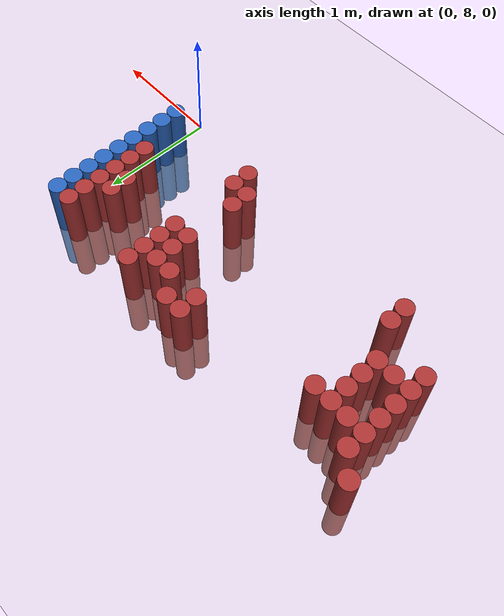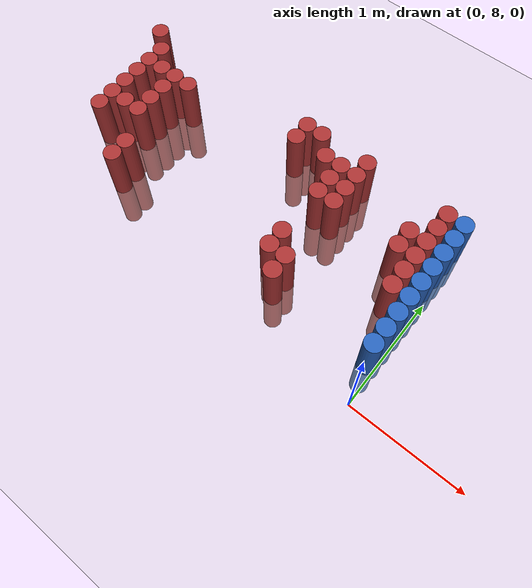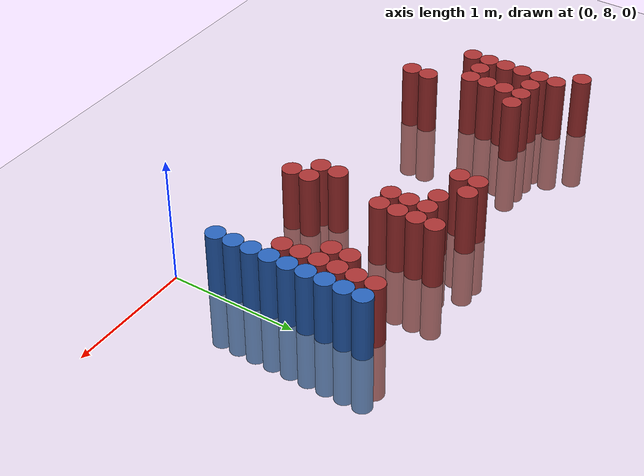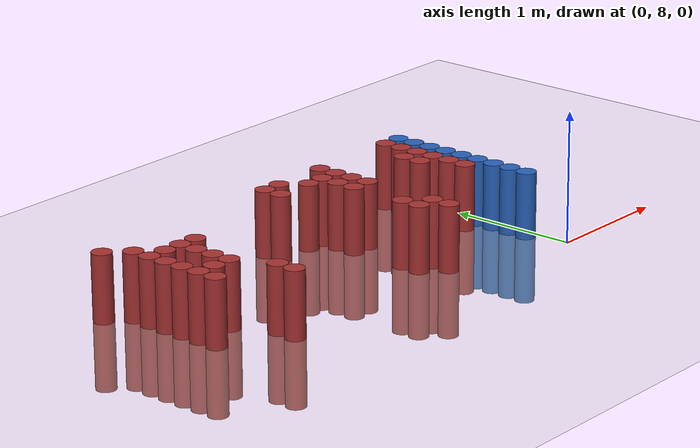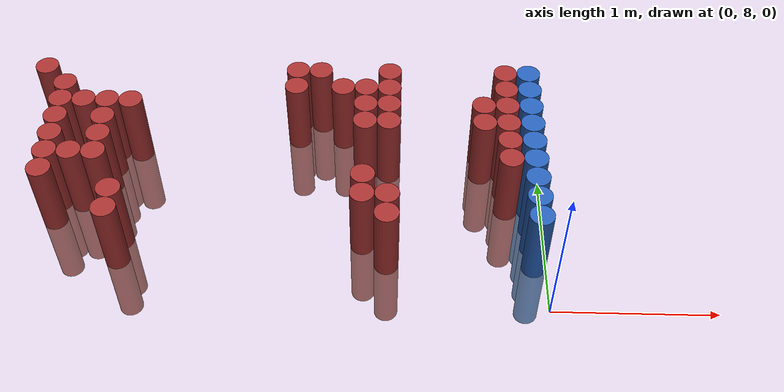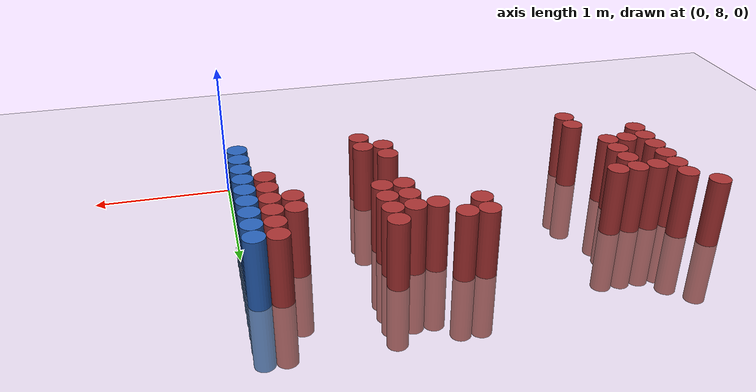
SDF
<sdf version="1.6">
 <world name="default">
  <model name="ground_plane">
   <static>1</static>
   <link name="link">
    <collision name="collision">
     <geometry><plane><normal>0 0 1</normal><size>100 100</size></plane></geometry>
     <surface><friction><ode><mu>100</mu><mu2>50</mu2></ode></friction></surface>
    </collision>
    <visual name="visual">
     <cast_shadows>0</cast_shadows>
     <geometry><plane><normal>0 0 1</normal><size>100 100</size></plane></geometry>
     <material>
      <script><uri>file://media/materials/scripts/gazebo.material</uri><name>Gazebo/Grey</name></script>
     </material>
    </visual>
   </link>
  </model>
  <model name="unit_cylinder_213">
   <static>1</static>
   <pose>-3.225000 9.525000 0.000000 0.000000 0.000000 0.000000</pose>
   <link name="link">
    <inertial>
     <mass>1</mass>
     <inertia><ixx>0.145833</ixx><ixy>0</ixy><ixz>0</ixz><iyy>0.145833</iyy><iyz>0</iyz><izz>0.125</izz></inertia>
    </inertial>
    <collision name="collision">
     <geometry><cylinder><radius>0.075000</radius><length>1</length></cylinder></geometry>
    </collision>
    <visual name="visual">
     <geometry><cylinder><radius>0.075000</radius><length>1</length></cylinder></geometry>
     <material>
      <ambient>0.648000 0.192000 0.192000 1</ambient>
      <diffuse>0.648000 0.192000 0.192000 1</diffuse>
     </material>
     <material>
      <script><name>Gazebo/Grey</name><uri>file://media/materials/scripts/gazebo.material</uri></script>
     </material>
    </visual>
   </link>
  </model>
  <model name="unit_cylinder_217">
   <static>1</static>
   <pose>-3.075000 8.625000 0.000000 0.000000 0.000000 0.000000</pose>
   <link name="link">
    <inertial>
     <mass>1</mass>
     <inertia><ixx>0.145833</ixx><ixy>0</ixy><ixz>0</ixz><iyy>0.145833</iyy><iyz>0</iyz><izz>0.125</izz></inertia>
    </inertial>
    <collision name="collision">
     <geometry><cylinder><radius>0.075000</radius><length>1</length></cylinder></geometry>
    </collision>
    <visual name="visual">
     <geometry><cylinder><radius>0.075000</radius><length>1</length></cylinder></geometry>
     <material>
      <ambient>0.648000 0.192000 0.192000 1</ambient>
      <diffuse>0.648000 0.192000 0.192000 1</diffuse>
     </material>
     <material>
      <script><name>Gazebo/Grey</name><uri>file://media/materials/scripts/gazebo.material</uri></script>
     </material>
    </visual>
   </link>
  </model>
  <model name="unit_cylinder_218">
   <static>1</static>
   <pose>-3.075000 8.775000 0.000000 0.000000 0.000000 0.000000</pose>
   <link name="link">
    <inertial>
     <mass>1</mass>
     <inertia><ixx>0.145833</ixx><ixy>0</ixy><ixz>0</ixz><iyy>0.145833</iyy><iyz>0</iyz><izz>0.125</izz></inertia>
    </inertial>
    <collision name="collision">
     <geometry><cylinder><radius>0.075000</radius><length>1</length></cylinder></geometry>
    </collision>
    <visual name="visual">
     <geometry><cylinder><radius>0.075000</radius><length>1</length></cylinder></geometry>
     <material>
      <ambient>0.648000 0.192000 0.192000 1</ambient>
      <diffuse>0.648000 0.192000 0.192000 1</diffuse>
     </material>
     <material>
      <script><name>Gazebo/Grey</name><uri>file://media/materials/scripts/gazebo.material</uri></script>
     </material>
    </visual>
   </link>
  </model>
  <model name="unit_cylinder_219">
   <static>1</static>
   <pose>-3.075000 8.925000 0.000000 0.000000 0.000000 0.000000</pose>
   <link name="link">
    <inertial>
     <mass>1</mass>
     <inertia><ixx>0.145833</ixx><ixy>0</ixy><ixz>0</ixz><iyy>0.145833</iyy><iyz>0</iyz><izz>0.125</izz></inertia>
    </inertial>
    <collision name="collision">
     <geometry><cylinder><radius>0.075000</radius><length>1</length></cylinder></geometry>
    </collision>
    <visual name="visual">
     <geometry><cylinder><radius>0.075000</radius><length>1</length></cylinder></geometry>
     <material>
      <ambient>0.648000 0.192000 0.192000 1</ambient>
      <diffuse>0.648000 0.192000 0.192000 1</diffuse>
     </material>
     <material>
      <script><name>Gazebo/Grey</name><uri>file://media/materials/scripts/gazebo.material</uri></script>
     </material>
    </visual>
   </link>
  </model>
  <model name="unit_cylinder_220">
   <static>1</static>
   <pose>-3.075000 9.075000 0.000000 0.000000 0.000000 0.000000</pose>
   <link name="link">
    <inertial>
     <mass>1</mass>
     <inertia><ixx>0.145833</ixx><ixy>0</ixy><ixz>0</ixz><iyy>0.145833</iyy><iyz>0</iyz><izz>0.125</izz></inertia>
    </inertial>
    <collision name="collision">
     <geometry><cylinder><radius>0.075000</radius><length>1</length></cylinder></geometry>
    </collision>
    <visual name="visual">
     <geometry><cylinder><radius>0.075000</radius><length>1</length></cylinder></geometry>
     <material>
      <ambient>0.648000 0.192000 0.192000 1</ambient>
      <diffuse>0.648000 0.192000 0.192000 1</diffuse>
     </material>
     <material>
      <script><name>Gazebo/Grey</name><uri>file://media/materials/scripts/gazebo.material</uri></script>
     </material>
    </visual>
   </link>
  </model>
  <model name="unit_cylinder_221">
   <static>1</static>
   <pose>-3.075000 9.225000 0.000000 0.000000 0.000000 0.000000</pose>
   <link name="link">
    <inertial>
     <mass>1</mass>
     <inertia><ixx>0.145833</ixx><ixy>0</ixy><ixz>0</ixz><iyy>0.145833</iyy><iyz>0</iyz><izz>0.125</izz></inertia>
    </inertial>
    <collision name="collision">
     <geometry><cylinder><radius>0.075000</radius><length>1</length></cylinder></geometry>
    </collision>
    <visual name="visual">
     <geometry><cylinder><radius>0.075000</radius><length>1</length></cylinder></geometry>
     <material>
      <ambient>0.648000 0.192000 0.192000 1</ambient>
      <diffuse>0.648000 0.192000 0.192000 1</diffuse>
     </material>
     <material>
      <script><name>Gazebo/Grey</name><uri>file://media/materials/scripts/gazebo.material</uri></script>
     </material>
    </visual>
   </link>
  </model>
  <model name="unit_cylinder_222">
   <static>1</static>
   <pose>-3.075000 9.375000 0.000000 0.000000 0.000000 0.000000</pose>
   <link name="link">
    <inertial>
     <mass>1</mass>
     <inertia><ixx>0.145833</ixx><ixy>0</ixy><ixz>0</ixz><iyy>0.145833</iyy><iyz>0</iyz><izz>0.125</izz></inertia>
    </inertial>
    <collision name="collision">
     <geometry><cylinder><radius>0.075000</radius><length>1</length></cylinder></geometry>
    </collision>
    <visual name="visual">
     <geometry><cylinder><radius>0.075000</radius><length>1</length></cylinder></geometry>
     <material>
      <ambient>0.648000 0.192000 0.192000 1</ambient>
      <diffuse>0.648000 0.192000 0.192000 1</diffuse>
     </material>
     <material>
      <script><name>Gazebo/Grey</name><uri>file://media/materials/scripts/gazebo.material</uri></script>
     </material>
    </visual>
   </link>
  </model>
  <model name="unit_cylinder_227">
   <static>1</static>
   <pose>-2.925000 8.775000 0.000000 0.000000 0.000000 0.000000</pose>
   <link name="link">
    <inertial>
     <mass>1</mass>
     <inertia><ixx>0.145833</ixx><ixy>0</ixy><ixz>0</ixz><iyy>0.145833</iyy><iyz>0</iyz><izz>0.125</izz></inertia>
    </inertial>
    <collision name="collision">
     <geometry><cylinder><radius>0.075000</radius><length>1</length></cylinder></geometry>
    </collision>
    <visual name="visual">
     <geometry><cylinder><radius>0.075000</radius><length>1</length></cylinder></geometry>
     <material>
      <ambient>0.648000 0.192000 0.192000 1</ambient>
      <diffuse>0.648000 0.192000 0.192000 1</diffuse>
     </material>
     <material>
      <script><name>Gazebo/Grey</name><uri>file://media/materials/scripts/gazebo.material</uri></script>
     </material>
    </visual>
   </link>
  </model>
  <model name="unit_cylinder_228">
   <static>1</static>
   <pose>-2.925000 9.225000 0.000000 0.000000 0.000000 0.000000</pose>
   <link name="link">
    <inertial>
     <mass>1</mass>
     <inertia><ixx>0.145833</ixx><ixy>0</ixy><ixz>0</ixz><iyy>0.145833</iyy><iyz>0</iyz><izz>0.125</izz></inertia>
    </inertial>
    <collision name="collision">
     <geometry><cylinder><radius>0.075000</radius><length>1</length></cylinder></geometry>
    </collision>
    <visual name="visual">
     <geometry><cylinder><radius>0.075000</radius><length>1</length></cylinder></geometry>
     <material>
      <ambient>0.648000 0.192000 0.192000 1</ambient>
      <diffuse>0.648000 0.192000 0.192000 1</diffuse>
     </material>
     <material>
      <script><name>Gazebo/Grey</name><uri>file://media/materials/scripts/gazebo.material</uri></script>
     </material>
    </visual>
   </link>
  </model>
  <model name="unit_cylinder_232">
   <static>1</static>
   <pose>-2.775000 8.775000 0.000000 0.000000 0.000000 0.000000</pose>
   <link name="link">
    <inertial>
     <mass>1</mass>
     <inertia><ixx>0.145833</ixx><ixy>0</ixy><ixz>0</ixz><iyy>0.145833</iyy><iyz>0</iyz><izz>0.125</izz></inertia>
    </inertial>
    <collision name="collision">
     <geometry><cylinder><radius>0.075000</radius><length>1</length></cylinder></geometry>
    </collision>
    <visual name="visual">
     <geometry><cylinder><radius>0.075000</radius><length>1</length></cylinder></geometry>
     <material>
      <ambient>0.648000 0.192000 0.192000 1</ambient>
      <diffuse>0.648000 0.192000 0.192000 1</diffuse>
     </material>
     <material>
      <script><name>Gazebo/Grey</name><uri>file://media/materials/scripts/gazebo.material</uri></script>
     </material>
    </visual>
   </link>
  </model>
  <model name="unit_cylinder_233">
   <static>1</static>
   <pose>-2.775000 8.925000 0.000000 0.000000 0.000000 0.000000</pose>
   <link name="link">
    <inertial>
     <mass>1</mass>
     <inertia><ixx>0.145833</ixx><ixy>0</ixy><ixz>0</ixz><iyy>0.145833</iyy><iyz>0</iyz><izz>0.125</izz></inertia>
    </inertial>
    <collision name="collision">
     <geometry><cylinder><radius>0.075000</radius><length>1</length></cylinder></geometry>
    </collision>
    <visual name="visual">
     <geometry><cylinder><radius>0.075000</radius><length>1</length></cylinder></geometry>
     <material>
      <ambient>0.648000 0.192000 0.192000 1</ambient>
      <diffuse>0.648000 0.192000 0.192000 1</diffuse>
     </material>
     <material>
      <script><name>Gazebo/Grey</name><uri>file://media/materials/scripts/gazebo.material</uri></script>
     </material>
    </visual>
   </link>
  </model>
  <model name="unit_cylinder_234">
   <static>1</static>
   <pose>-2.775000 9.075000 0.000000 0.000000 0.000000 0.000000</pose>
   <link name="link">
    <inertial>
     <mass>1</mass>
     <inertia><ixx>0.145833</ixx><ixy>0</ixy><ixz>0</ixz><iyy>0.145833</iyy><iyz>0</iyz><izz>0.125</izz></inertia>
    </inertial>
    <collision name="collision">
     <geometry><cylinder><radius>0.075000</radius><length>1</length></cylinder></geometry>
    </collision>
    <visual name="visual">
     <geometry><cylinder><radius>0.075000</radius><length>1</length></cylinder></geometry>
     <material>
      <ambient>0.648000 0.192000 0.192000 1</ambient>
      <diffuse>0.648000 0.192000 0.192000 1</diffuse>
     </material>
     <material>
      <script><name>Gazebo/Grey</name><uri>file://media/materials/scripts/gazebo.material</uri></script>
     </material>
    </visual>
   </link>
  </model>
  <model name="unit_cylinder_235">
   <static>1</static>
   <pose>-2.775000 9.225000 0.000000 0.000000 0.000000 0.000000</pose>
   <link name="link">
    <inertial>
     <mass>1</mass>
     <inertia><ixx>0.145833</ixx><ixy>0</ixy><ixz>0</ixz><iyy>0.145833</iyy><iyz>0</iyz><izz>0.125</izz></inertia>
    </inertial>
    <collision name="collision">
     <geometry><cylinder><radius>0.075000</radius><length>1</length></cylinder></geometry>
    </collision>
    <visual name="visual">
     <geometry><cylinder><radius>0.075000</radius><length>1</length></cylinder></geometry>
     <material>
      <ambient>0.648000 0.192000 0.192000 1</ambient>
      <diffuse>0.648000 0.192000 0.192000 1</diffuse>
     </material>
     <material>
      <script><name>Gazebo/Grey</name><uri>file://media/materials/scripts/gazebo.material</uri></script>
     </material>
    </visual>
   </link>
  </model>
  <model name="unit_cylinder_237">
   <static>1</static>
   <pose>-2.625000 8.325000 0.000000 0.000000 0.000000 0.000000</pose>
   <link name="link">
    <inertial>
     <mass>1</mass>
     <inertia><ixx>0.145833</ixx><ixy>0</ixy><ixz>0</ixz><iyy>0.145833</iyy><iyz>0</iyz><izz>0.125</izz></inertia>
    </inertial>
    <collision name="collision">
     <geometry><cylinder><radius>0.075000</radius><length>1</length></cylinder></geometry>
    </collision>
    <visual name="visual">
     <geometry><cylinder><radius>0.075000</radius><length>1</length></cylinder></geometry>
     <material>
      <ambient>0.648000 0.192000 0.192000 1</ambient>
      <diffuse>0.648000 0.192000 0.192000 1</diffuse>
     </material>
     <material>
      <script><name>Gazebo/Grey</name><uri>file://media/materials/scripts/gazebo.material</uri></script>
     </material>
    </visual>
   </link>
  </model>
  <model name="unit_cylinder_238">
   <static>1</static>
   <pose>-2.625000 8.475000 0.000000 0.000000 0.000000 0.000000</pose>
   <link name="link">
    <inertial>
     <mass>1</mass>
     <inertia><ixx>0.145833</ixx><ixy>0</ixy><ixz>0</ixz><iyy>0.145833</iyy><iyz>0</iyz><izz>0.125</izz></inertia>
    </inertial>
    <collision name="collision">
     <geometry><cylinder><radius>0.075000</radius><length>1</length></cylinder></geometry>
    </collision>
    <visual name="visual">
     <geometry><cylinder><radius>0.075000</radius><length>1</length></cylinder></geometry>
     <material>
      <ambient>0.648000 0.192000 0.192000 1</ambient>
      <diffuse>0.648000 0.192000 0.192000 1</diffuse>
     </material>
     <material>
      <script><name>Gazebo/Grey</name><uri>file://media/materials/scripts/gazebo.material</uri></script>
     </material>
    </visual>
   </link>
  </model>
  <model name="unit_cylinder_239">
   <static>1</static>
   <pose>-2.625000 9.225000 0.000000 0.000000 0.000000 0.000000</pose>
   <link name="link">
    <inertial>
     <mass>1</mass>
     <inertia><ixx>0.145833</ixx><ixy>0</ixy><ixz>0</ixz><iyy>0.145833</iyy><iyz>0</iyz><izz>0.125</izz></inertia>
    </inertial>
    <collision name="collision">
     <geometry><cylinder><radius>0.075000</radius><length>1</length></cylinder></geometry>
    </collision>
    <visual name="visual">
     <geometry><cylinder><radius>0.075000</radius><length>1</length></cylinder></geometry>
     <material>
      <ambient>0.648000 0.192000 0.192000 1</ambient>
      <diffuse>0.648000 0.192000 0.192000 1</diffuse>
     </material>
     <material>
      <script><name>Gazebo/Grey</name><uri>file://media/materials/scripts/gazebo.material</uri></script>
     </material>
    </visual>
   </link>
  </model>
  <model name="unit_cylinder_244">
   <static>1</static>
   <pose>-1.575000 9.375000 0.000000 0.000000 0.000000 0.000000</pose>
   <link name="link">
    <inertial>
     <mass>1</mass>
     <inertia><ixx>0.145833</ixx><ixy>0</ixy><ixz>0</ixz><iyy>0.145833</iyy><iyz>0</iyz><izz>0.125</izz></inertia>
    </inertial>
    <collision name="collision">
     <geometry><cylinder><radius>0.075000</radius><length>1</length></cylinder></geometry>
    </collision>
    <visual name="visual">
     <geometry><cylinder><radius>0.075000</radius><length>1</length></cylinder></geometry>
     <material>
      <ambient>0.648000 0.192000 0.192000 1</ambient>
      <diffuse>0.648000 0.192000 0.192000 1</diffuse>
     </material>
     <material>
      <script><name>Gazebo/Grey</name><uri>file://media/materials/scripts/gazebo.material</uri></script>
     </material>
    </visual>
   </link>
  </model>
  <model name="unit_cylinder_245">
   <static>1</static>
   <pose>-1.575000 9.525000 0.000000 0.000000 0.000000 0.000000</pose>
   <link name="link">
    <inertial>
     <mass>1</mass>
     <inertia><ixx>0.145833</ixx><ixy>0</ixy><ixz>0</ixz><iyy>0.145833</iyy><iyz>0</iyz><izz>0.125</izz></inertia>
    </inertial>
    <collision name="collision">
     <geometry><cylinder><radius>0.075000</radius><length>1</length></cylinder></geometry>
    </collision>
    <visual name="visual">
     <geometry><cylinder><radius>0.075000</radius><length>1</length></cylinder></geometry>
     <material>
      <ambient>0.648000 0.192000 0.192000 1</ambient>
      <diffuse>0.648000 0.192000 0.192000 1</diffuse>
     </material>
     <material>
      <script><name>Gazebo/Grey</name><uri>file://media/materials/scripts/gazebo.material</uri></script>
     </material>
    </visual>
   </link>
  </model>
  <model name="unit_cylinder_249">
   <static>1</static>
   <pose>-1.425000 9.525000 0.000000 0.000000 0.000000 0.000000</pose>
   <link name="link">
    <inertial>
     <mass>1</mass>
     <inertia><ixx>0.145833</ixx><ixy>0</ixy><ixz>0</ixz><iyy>0.145833</iyy><iyz>0</iyz><izz>0.125</izz></inertia>
    </inertial>
    <collision name="collision">
     <geometry><cylinder><radius>0.075000</radius><length>1</length></cylinder></geometry>
    </collision>
    <visual name="visual">
     <geometry><cylinder><radius>0.075000</radius><length>1</length></cylinder></geometry>
     <material>
      <ambient>0.648000 0.192000 0.192000 1</ambient>
      <diffuse>0.648000 0.192000 0.192000 1</diffuse>
     </material>
     <material>
      <script><name>Gazebo/Grey</name><uri>file://media/materials/scripts/gazebo.material</uri></script>
     </material>
    </visual>
   </link>
  </model>
  <model name="unit_cylinder_252">
   <static>1</static>
   <pose>-1.275000 9.375000 0.000000 0.000000 0.000000 0.000000</pose>
   <link name="link">
    <inertial>
     <mass>1</mass>
     <inertia><ixx>0.145833</ixx><ixy>0</ixy><ixz>0</ixz><iyy>0.145833</iyy><iyz>0</iyz><izz>0.125</izz></inertia>
    </inertial>
    <collision name="collision">
     <geometry><cylinder><radius>0.075000</radius><length>1</length></cylinder></geometry>
    </collision>
    <visual name="visual">
     <geometry><cylinder><radius>0.075000</radius><length>1</length></cylinder></geometry>
     <material>
      <ambient>0.648000 0.192000 0.192000 1</ambient>
      <diffuse>0.648000 0.192000 0.192000 1</diffuse>
     </material>
     <material>
      <script><name>Gazebo/Grey</name><uri>file://media/materials/scripts/gazebo.material</uri></script>
     </material>
    </visual>
   </link>
  </model>
  <model name="unit_cylinder_254">
   <static>1</static>
   <pose>-1.125000 8.475000 0.000000 0.000000 0.000000 0.000000</pose>
   <link name="link">
    <inertial>
     <mass>1</mass>
     <inertia><ixx>0.145833</ixx><ixy>0</ixy><ixz>0</ixz><iyy>0.145833</iyy><iyz>0</iyz><izz>0.125</izz></inertia>
    </inertial>
    <collision name="collision">
     <geometry><cylinder><radius>0.075000</radius><length>1</length></cylinder></geometry>
    </collision>
    <visual name="visual">
     <geometry><cylinder><radius>0.075000</radius><length>1</length></cylinder></geometry>
     <material>
      <ambient>0.648000 0.192000 0.192000 1</ambient>
      <diffuse>0.648000 0.192000 0.192000 1</diffuse>
     </material>
     <material>
      <script><name>Gazebo/Grey</name><uri>file://media/materials/scripts/gazebo.material</uri></script>
     </material>
    </visual>
   </link>
  </model>
  <model name="unit_cylinder_255">
   <static>1</static>
   <pose>-1.125000 8.625000 0.000000 0.000000 0.000000 0.000000</pose>
   <link name="link">
    <inertial>
     <mass>1</mass>
     <inertia><ixx>0.145833</ixx><ixy>0</ixy><ixz>0</ixz><iyy>0.145833</iyy><iyz>0</iyz><izz>0.125</izz></inertia>
    </inertial>
    <collision name="collision">
     <geometry><cylinder><radius>0.075000</radius><length>1</length></cylinder></geometry>
    </collision>
    <visual name="visual">
     <geometry><cylinder><radius>0.075000</radius><length>1</length></cylinder></geometry>
     <material>
      <ambient>0.648000 0.192000 0.192000 1</ambient>
      <diffuse>0.648000 0.192000 0.192000 1</diffuse>
     </material>
     <material>
      <script><name>Gazebo/Grey</name><uri>file://media/materials/scripts/gazebo.material</uri></script>
     </material>
    </visual>
   </link>
  </model>
  <model name="unit_cylinder_256">
   <static>1</static>
   <pose>-1.125000 9.075000 0.000000 0.000000 0.000000 0.000000</pose>
   <link name="link">
    <inertial>
     <mass>1</mass>
     <inertia><ixx>0.145833</ixx><ixy>0</ixy><ixz>0</ixz><iyy>0.145833</iyy><iyz>0</iyz><izz>0.125</izz></inertia>
    </inertial>
    <collision name="collision">
     <geometry><cylinder><radius>0.075000</radius><length>1</length></cylinder></geometry>
    </collision>
    <visual name="visual">
     <geometry><cylinder><radius>0.075000</radius><length>1</length></cylinder></geometry>
     <material>
      <ambient>0.648000 0.192000 0.192000 1</ambient>
      <diffuse>0.648000 0.192000 0.192000 1</diffuse>
     </material>
     <material>
      <script><name>Gazebo/Grey</name><uri>file://media/materials/scripts/gazebo.material</uri></script>
     </material>
    </visual>
   </link>
  </model>
  <model name="unit_cylinder_257">
   <static>1</static>
   <pose>-1.125000 9.225000 0.000000 0.000000 0.000000 0.000000</pose>
   <link name="link">
    <inertial>
     <mass>1</mass>
     <inertia><ixx>0.145833</ixx><ixy>0</ixy><ixz>0</ixz><iyy>0.145833</iyy><iyz>0</iyz><izz>0.125</izz></inertia>
    </inertial>
    <collision name="collision">
     <geometry><cylinder><radius>0.075000</radius><length>1</length></cylinder></geometry>
    </collision>
    <visual name="visual">
     <geometry><cylinder><radius>0.075000</radius><length>1</length></cylinder></geometry>
     <material>
      <ambient>0.648000 0.192000 0.192000 1</ambient>
      <diffuse>0.648000 0.192000 0.192000 1</diffuse>
     </material>
     <material>
      <script><name>Gazebo/Grey</name><uri>file://media/materials/scripts/gazebo.material</uri></script>
     </material>
    </visual>
   </link>
  </model>
  <model name="unit_cylinder_258">
   <static>1</static>
   <pose>-1.125000 9.375000 0.000000 0.000000 0.000000 0.000000</pose>
   <link name="link">
    <inertial>
     <mass>1</mass>
     <inertia><ixx>0.145833</ixx><ixy>0</ixy><ixz>0</ixz><iyy>0.145833</iyy><iyz>0</iyz><izz>0.125</izz></inertia>
    </inertial>
    <collision name="collision">
     <geometry><cylinder><radius>0.075000</radius><length>1</length></cylinder></geometry>
    </collision>
    <visual name="visual">
     <geometry><cylinder><radius>0.075000</radius><length>1</length></cylinder></geometry>
     <material>
      <ambient>0.648000 0.192000 0.192000 1</ambient>
      <diffuse>0.648000 0.192000 0.192000 1</diffuse>
     </material>
     <material>
      <script><name>Gazebo/Grey</name><uri>file://media/materials/scripts/gazebo.material</uri></script>
     </material>
    </visual>
   </link>
  </model>
  <model name="unit_cylinder_263">
   <static>1</static>
   <pose>-0.975000 8.325000 0.000000 0.000000 0.000000 0.000000</pose>
   <link name="link">
    <inertial>
     <mass>1</mass>
     <inertia><ixx>0.145833</ixx><ixy>0</ixy><ixz>0</ixz><iyy>0.145833</iyy><iyz>0</iyz><izz>0.125</izz></inertia>
    </inertial>
    <collision name="collision">
     <geometry><cylinder><radius>0.075000</radius><length>1</length></cylinder></geometry>
    </collision>
    <visual name="visual">
     <geometry><cylinder><radius>0.075000</radius><length>1</length></cylinder></geometry>
     <material>
      <ambient>0.648000 0.192000 0.192000 1</ambient>
      <diffuse>0.648000 0.192000 0.192000 1</diffuse>
     </material>
     <material>
      <script><name>Gazebo/Grey</name><uri>file://media/materials/scripts/gazebo.material</uri></script>
     </material>
    </visual>
   </link>
  </model>
  <model name="unit_cylinder_264">
   <static>1</static>
   <pose>-0.975000 8.475000 0.000000 0.000000 0.000000 0.000000</pose>
   <link name="link">
    <inertial>
     <mass>1</mass>
     <inertia><ixx>0.145833</ixx><ixy>0</ixy><ixz>0</ixz><iyy>0.145833</iyy><iyz>0</iyz><izz>0.125</izz></inertia>
    </inertial>
    <collision name="collision">
     <geometry><cylinder><radius>0.075000</radius><length>1</length></cylinder></geometry>
    </collision>
    <visual name="visual">
     <geometry><cylinder><radius>0.075000</radius><length>1</length></cylinder></geometry>
     <material>
      <ambient>0.648000 0.192000 0.192000 1</ambient>
      <diffuse>0.648000 0.192000 0.192000 1</diffuse>
     </material>
     <material>
      <script><name>Gazebo/Grey</name><uri>file://media/materials/scripts/gazebo.material</uri></script>
     </material>
    </visual>
   </link>
  </model>
  <model name="unit_cylinder_265">
   <static>1</static>
   <pose>-0.975000 9.075000 0.000000 0.000000 0.000000 0.000000</pose>
   <link name="link">
    <inertial>
     <mass>1</mass>
     <inertia><ixx>0.145833</ixx><ixy>0</ixy><ixz>0</ixz><iyy>0.145833</iyy><iyz>0</iyz><izz>0.125</izz></inertia>
    </inertial>
    <collision name="collision">
     <geometry><cylinder><radius>0.075000</radius><length>1</length></cylinder></geometry>
    </collision>
    <visual name="visual">
     <geometry><cylinder><radius>0.075000</radius><length>1</length></cylinder></geometry>
     <material>
      <ambient>0.648000 0.192000 0.192000 1</ambient>
      <diffuse>0.648000 0.192000 0.192000 1</diffuse>
     </material>
     <material>
      <script><name>Gazebo/Grey</name><uri>file://media/materials/scripts/gazebo.material</uri></script>
     </material>
    </visual>
   </link>
  </model>
  <model name="unit_cylinder_266">
   <static>1</static>
   <pose>-0.975000 9.225000 0.000000 0.000000 0.000000 0.000000</pose>
   <link name="link">
    <inertial>
     <mass>1</mass>
     <inertia><ixx>0.145833</ixx><ixy>0</ixy><ixz>0</ixz><iyy>0.145833</iyy><iyz>0</iyz><izz>0.125</izz></inertia>
    </inertial>
    <collision name="collision">
     <geometry><cylinder><radius>0.075000</radius><length>1</length></cylinder></geometry>
    </collision>
    <visual name="visual">
     <geometry><cylinder><radius>0.075000</radius><length>1</length></cylinder></geometry>
     <material>
      <ambient>0.648000 0.192000 0.192000 1</ambient>
      <diffuse>0.648000 0.192000 0.192000 1</diffuse>
     </material>
     <material>
      <script><name>Gazebo/Grey</name><uri>file://media/materials/scripts/gazebo.material</uri></script>
     </material>
    </visual>
   </link>
  </model>
  <model name="unit_cylinder_267">
   <static>1</static>
   <pose>-0.975000 9.375000 0.000000 0.000000 0.000000 0.000000</pose>
   <link name="link">
    <inertial>
     <mass>1</mass>
     <inertia><ixx>0.145833</ixx><ixy>0</ixy><ixz>0</ixz><iyy>0.145833</iyy><iyz>0</iyz><izz>0.125</izz></inertia>
    </inertial>
    <collision name="collision">
     <geometry><cylinder><radius>0.075000</radius><length>1</length></cylinder></geometry>
    </collision>
    <visual name="visual">
     <geometry><cylinder><radius>0.075000</radius><length>1</length></cylinder></geometry>
     <material>
      <ambient>0.648000 0.192000 0.192000 1</ambient>
      <diffuse>0.648000 0.192000 0.192000 1</diffuse>
     </material>
     <material>
      <script><name>Gazebo/Grey</name><uri>file://media/materials/scripts/gazebo.material</uri></script>
     </material>
    </visual>
   </link>
  </model>
  <model name="unit_cylinder_268">
   <static>1</static>
   <pose>-0.975000 9.525000 0.000000 0.000000 0.000000 0.000000</pose>
   <link name="link">
    <inertial>
     <mass>1</mass>
     <inertia><ixx>0.145833</ixx><ixy>0</ixy><ixz>0</ixz><iyy>0.145833</iyy><iyz>0</iyz><izz>0.125</izz></inertia>
    </inertial>
    <collision name="collision">
     <geometry><cylinder><radius>0.075000</radius><length>1</length></cylinder></geometry>
    </collision>
    <visual name="visual">
     <geometry><cylinder><radius>0.075000</radius><length>1</length></cylinder></geometry>
     <material>
      <ambient>0.648000 0.192000 0.192000 1</ambient>
      <diffuse>0.648000 0.192000 0.192000 1</diffuse>
     </material>
     <material>
      <script><name>Gazebo/Grey</name><uri>file://media/materials/scripts/gazebo.material</uri></script>
     </material>
    </visual>
   </link>
  </model>
  <model name="unit_cylinder_288">
   <static>1</static>
   <pose>-0.375000 9.075000 0.000000 0.000000 0.000000 0.000000</pose>
   <link name="link">
    <inertial>
     <mass>1</mass>
     <inertia><ixx>0.145833</ixx><ixy>0</ixy><ixz>0</ixz><iyy>0.145833</iyy><iyz>0</iyz><izz>0.125</izz></inertia>
    </inertial>
    <collision name="collision">
     <geometry><cylinder><radius>0.075000</radius><length>1</length></cylinder></geometry>
    </collision>
    <visual name="visual">
     <geometry><cylinder><radius>0.075000</radius><length>1</length></cylinder></geometry>
     <material>
      <ambient>0.648000 0.192000 0.192000 1</ambient>
      <diffuse>0.648000 0.192000 0.192000 1</diffuse>
     </material>
     <material>
      <script><name>Gazebo/Grey</name><uri>file://media/materials/scripts/gazebo.material</uri></script>
     </material>
    </visual>
   </link>
  </model>
  <model name="unit_cylinder_289">
   <static>1</static>
   <pose>-0.375000 9.225000 0.000000 0.000000 0.000000 0.000000</pose>
   <link name="link">
    <inertial>
     <mass>1</mass>
     <inertia><ixx>0.145833</ixx><ixy>0</ixy><ixz>0</ixz><iyy>0.145833</iyy><iyz>0</iyz><izz>0.125</izz></inertia>
    </inertial>
    <collision name="collision">
     <geometry><cylinder><radius>0.075000</radius><length>1</length></cylinder></geometry>
    </collision>
    <visual name="visual">
     <geometry><cylinder><radius>0.075000</radius><length>1</length></cylinder></geometry>
     <material>
      <ambient>0.648000 0.192000 0.192000 1</ambient>
      <diffuse>0.648000 0.192000 0.192000 1</diffuse>
     </material>
     <material>
      <script><name>Gazebo/Grey</name><uri>file://media/materials/scripts/gazebo.material</uri></script>
     </material>
    </visual>
   </link>
  </model>
  <model name="unit_cylinder_298">
   <static>1</static>
   <pose>-0.225000 8.775000 0.000000 0.000000 0.000000 0.000000</pose>
   <link name="link">
    <inertial>
     <mass>1</mass>
     <inertia><ixx>0.145833</ixx><ixy>0</ixy><ixz>0</ixz><iyy>0.145833</iyy><iyz>0</iyz><izz>0.125</izz></inertia>
    </inertial>
    <collision name="collision">
     <geometry><cylinder><radius>0.075000</radius><length>1</length></cylinder></geometry>
    </collision>
    <visual name="visual">
     <geometry><cylinder><radius>0.075000</radius><length>1</length></cylinder></geometry>
     <material>
      <ambient>0.648000 0.192000 0.192000 1</ambient>
      <diffuse>0.648000 0.192000 0.192000 1</diffuse>
     </material>
     <material>
      <script><name>Gazebo/Grey</name><uri>file://media/materials/scripts/gazebo.material</uri></script>
     </material>
    </visual>
   </link>
  </model>
  <model name="unit_cylinder_299">
   <static>1</static>
   <pose>-0.225000 8.925000 0.000000 0.000000 0.000000 0.000000</pose>
   <link name="link">
    <inertial>
     <mass>1</mass>
     <inertia><ixx>0.145833</ixx><ixy>0</ixy><ixz>0</ixz><iyy>0.145833</iyy><iyz>0</iyz><izz>0.125</izz></inertia>
    </inertial>
    <collision name="collision">
     <geometry><cylinder><radius>0.075000</radius><length>1</length></cylinder></geometry>
    </collision>
    <visual name="visual">
     <geometry><cylinder><radius>0.075000</radius><length>1</length></cylinder></geometry>
     <material>
      <ambient>0.648000 0.192000 0.192000 1</ambient>
      <diffuse>0.648000 0.192000 0.192000 1</diffuse>
     </material>
     <material>
      <script><name>Gazebo/Grey</name><uri>file://media/materials/scripts/gazebo.material</uri></script>
     </material>
    </visual>
   </link>
  </model>
  <model name="unit_cylinder_300">
   <static>1</static>
   <pose>-0.225000 9.075000 0.000000 0.000000 0.000000 0.000000</pose>
   <link name="link">
    <inertial>
     <mass>1</mass>
     <inertia><ixx>0.145833</ixx><ixy>0</ixy><ixz>0</ixz><iyy>0.145833</iyy><iyz>0</iyz><izz>0.125</izz></inertia>
    </inertial>
    <collision name="collision">
     <geometry><cylinder><radius>0.075000</radius><length>1</length></cylinder></geometry>
    </collision>
    <visual name="visual">
     <geometry><cylinder><radius>0.075000</radius><length>1</length></cylinder></geometry>
     <material>
      <ambient>0.648000 0.192000 0.192000 1</ambient>
      <diffuse>0.648000 0.192000 0.192000 1</diffuse>
     </material>
     <material>
      <script><name>Gazebo/Grey</name><uri>file://media/materials/scripts/gazebo.material</uri></script>
     </material>
    </visual>
   </link>
  </model>
  <model name="unit_cylinder_301">
   <static>1</static>
   <pose>-0.225000 9.225000 0.000000 0.000000 0.000000 0.000000</pose>
   <link name="link">
    <inertial>
     <mass>1</mass>
     <inertia><ixx>0.145833</ixx><ixy>0</ixy><ixz>0</ixz><iyy>0.145833</iyy><iyz>0</iyz><izz>0.125</izz></inertia>
    </inertial>
    <collision name="collision">
     <geometry><cylinder><radius>0.075000</radius><length>1</length></cylinder></geometry>
    </collision>
    <visual name="visual">
     <geometry><cylinder><radius>0.075000</radius><length>1</length></cylinder></geometry>
     <material>
      <ambient>0.648000 0.192000 0.192000 1</ambient>
      <diffuse>0.648000 0.192000 0.192000 1</diffuse>
     </material>
     <material>
      <script><name>Gazebo/Grey</name><uri>file://media/materials/scripts/gazebo.material</uri></script>
     </material>
    </visual>
   </link>
  </model>
  <model name="unit_cylinder_302">
   <static>1</static>
   <pose>-0.225000 9.375000 0.000000 0.000000 0.000000 0.000000</pose>
   <link name="link">
    <inertial>
     <mass>1</mass>
     <inertia><ixx>0.145833</ixx><ixy>0</ixy><ixz>0</ixz><iyy>0.145833</iyy><iyz>0</iyz><izz>0.125</izz></inertia>
    </inertial>
    <collision name="collision">
     <geometry><cylinder><radius>0.075000</radius><length>1</length></cylinder></geometry>
    </collision>
    <visual name="visual">
     <geometry><cylinder><radius>0.075000</radius><length>1</length></cylinder></geometry>
     <material>
      <ambient>0.648000 0.192000 0.192000 1</ambient>
      <diffuse>0.648000 0.192000 0.192000 1</diffuse>
     </material>
     <material>
      <script><name>Gazebo/Grey</name><uri>file://media/materials/scripts/gazebo.material</uri></script>
     </material>
    </visual>
   </link>
  </model>
  <model name="unit_cylinder_303">
   <static>1</static>
   <pose>-0.225000 9.525000 0.000000 0.000000 0.000000 0.000000</pose>
   <link name="link">
    <inertial>
     <mass>1</mass>
     <inertia><ixx>0.145833</ixx><ixy>0</ixy><ixz>0</ixz><iyy>0.145833</iyy><iyz>0</iyz><izz>0.125</izz></inertia>
    </inertial>
    <collision name="collision">
     <geometry><cylinder><radius>0.075000</radius><length>1</length></cylinder></geometry>
    </collision>
    <visual name="visual">
     <geometry><cylinder><radius>0.075000</radius><length>1</length></cylinder></geometry>
     <material>
      <ambient>0.648000 0.192000 0.192000 1</ambient>
      <diffuse>0.648000 0.192000 0.192000 1</diffuse>
     </material>
     <material>
      <script><name>Gazebo/Grey</name><uri>file://media/materials/scripts/gazebo.material</uri></script>
     </material>
    </visual>
   </link>
  </model>
  <model name="unit_cylinder_325">
   <static>1</static>
   <pose>-0.075000 8.325000 0.000000 0.000000 0.000000 0.000000</pose>
   <link name="link">
    <inertial>
     <mass>1</mass>
     <inertia><ixx>0.145833</ixx><ixy>0</ixy><ixz>0</ixz><iyy>0.145833</iyy><iyz>0</iyz><izz>0.125</izz></inertia>
    </inertial>
    <collision name="collision">
     <geometry><cylinder><radius>0.075000</radius><length>1</length></cylinder></geometry>
    </collision>
    <visual name="visual">
     <geometry><cylinder><radius>0.075000</radius><length>1</length></cylinder></geometry>
     <material>
      <ambient>0.152000 0.379000 0.720000 1</ambient>
      <diffuse>0.152000 0.379000 0.720000 1</diffuse>
     </material>
     <material>
      <script><name>Gazebo/Grey</name><uri>file://media/materials/scripts/gazebo.material</uri></script>
     </material>
    </visual>
   </link>
  </model>
  <model name="unit_cylinder_326">
   <static>1</static>
   <pose>-0.075000 8.475000 0.000000 0.000000 0.000000 0.000000</pose>
   <link name="link">
    <inertial>
     <mass>1</mass>
     <inertia><ixx>0.145833</ixx><ixy>0</ixy><ixz>0</ixz><iyy>0.145833</iyy><iyz>0</iyz><izz>0.125</izz></inertia>
    </inertial>
    <collision name="collision">
     <geometry><cylinder><radius>0.075000</radius><length>1</length></cylinder></geometry>
    </collision>
    <visual name="visual">
     <geometry><cylinder><radius>0.075000</radius><length>1</length></cylinder></geometry>
     <material>
      <ambient>0.152000 0.379000 0.720000 1</ambient>
      <diffuse>0.152000 0.379000 0.720000 1</diffuse>
     </material>
     <material>
      <script><name>Gazebo/Grey</name><uri>file://media/materials/scripts/gazebo.material</uri></script>
     </material>
    </visual>
   </link>
  </model>
  <model name="unit_cylinder_327">
   <static>1</static>
   <pose>-0.075000 8.625000 0.000000 0.000000 0.000000 0.000000</pose>
   <link name="link">
    <inertial>
     <mass>1</mass>
     <inertia><ixx>0.145833</ixx><ixy>0</ixy><ixz>0</ixz><iyy>0.145833</iyy><iyz>0</iyz><izz>0.125</izz></inertia>
    </inertial>
    <collision name="collision">
     <geometry><cylinder><radius>0.075000</radius><length>1</length></cylinder></geometry>
    </collision>
    <visual name="visual">
     <geometry><cylinder><radius>0.075000</radius><length>1</length></cylinder></geometry>
     <material>
      <ambient>0.152000 0.379000 0.720000 1</ambient>
      <diffuse>0.152000 0.379000 0.720000 1</diffuse>
     </material>
     <material>
      <script><name>Gazebo/Grey</name><uri>file://media/materials/scripts/gazebo.material</uri></script>
     </material>
    </visual>
   </link>
  </model>
  <model name="unit_cylinder_328">
   <static>1</static>
   <pose>-0.075000 8.775000 0.000000 0.000000 0.000000 0.000000</pose>
   <link name="link">
    <inertial>
     <mass>1</mass>
     <inertia><ixx>0.145833</ixx><ixy>0</ixy><ixz>0</ixz><iyy>0.145833</iyy><iyz>0</iyz><izz>0.125</izz></inertia>
    </inertial>
    <collision name="collision">
     <geometry><cylinder><radius>0.075000</radius><length>1</length></cylinder></geometry>
    </collision>
    <visual name="visual">
     <geometry><cylinder><radius>0.075000</radius><length>1</length></cylinder></geometry>
     <material>
      <ambient>0.152000 0.379000 0.720000 1</ambient>
      <diffuse>0.152000 0.379000 0.720000 1</diffuse>
     </material>
     <material>
      <script><name>Gazebo/Grey</name><uri>file://media/materials/scripts/gazebo.material</uri></script>
     </material>
    </visual>
   </link>
  </model>
  <model name="unit_cylinder_329">
   <static>1</static>
   <pose>-0.075000 8.925000 0.000000 0.000000 0.000000 0.000000</pose>
   <link name="link">
    <inertial>
     <mass>1</mass>
     <inertia><ixx>0.145833</ixx><ixy>0</ixy><ixz>0</ixz><iyy>0.145833</iyy><iyz>0</iyz><izz>0.125</izz></inertia>
    </inertial>
    <collision name="collision">
     <geometry><cylinder><radius>0.075000</radius><length>1</length></cylinder></geometry>
    </collision>
    <visual name="visual">
     <geometry><cylinder><radius>0.075000</radius><length>1</length></cylinder></geometry>
     <material>
      <ambient>0.152000 0.379000 0.720000 1</ambient>
      <diffuse>0.152000 0.379000 0.720000 1</diffuse>
     </material>
     <material>
      <script><name>Gazebo/Grey</name><uri>file://media/materials/scripts/gazebo.material</uri></script>
     </material>
    </visual>
   </link>
  </model>
  <model name="unit_cylinder_330">
   <static>1</static>
   <pose>-0.075000 9.075000 0.000000 0.000000 0.000000 0.000000</pose>
   <link name="link">
    <inertial>
     <mass>1</mass>
     <inertia><ixx>0.145833</ixx><ixy>0</ixy><ixz>0</ixz><iyy>0.145833</iyy><iyz>0</iyz><izz>0.125</izz></inertia>
    </inertial>
    <collision name="collision">
     <geometry><cylinder><radius>0.075000</radius><length>1</length></cylinder></geometry>
    </collision>
    <visual name="visual">
     <geometry><cylinder><radius>0.075000</radius><length>1</length></cylinder></geometry>
     <material>
      <ambient>0.152000 0.379000 0.720000 1</ambient>
      <diffuse>0.152000 0.379000 0.720000 1</diffuse>
     </material>
     <material>
      <script><name>Gazebo/Grey</name><uri>file://media/materials/scripts/gazebo.material</uri></script>
     </material>
    </visual>
   </link>
  </model>
  <model name="unit_cylinder_331">
   <static>1</static>
   <pose>-0.075000 9.225000 0.000000 0.000000 0.000000 0.000000</pose>
   <link name="link">
    <inertial>
     <mass>1</mass>
     <inertia><ixx>0.145833</ixx><ixy>0</ixy><ixz>0</ixz><iyy>0.145833</iyy><iyz>0</iyz><izz>0.125</izz></inertia>
    </inertial>
    <collision name="collision">
     <geometry><cylinder><radius>0.075000</radius><length>1</length></cylinder></geometry>
    </collision>
    <visual name="visual">
     <geometry><cylinder><radius>0.075000</radius><length>1</length></cylinder></geometry>
     <material>
      <ambient>0.152000 0.379000 0.720000 1</ambient>
      <diffuse>0.152000 0.379000 0.720000 1</diffuse>
     </material>
     <material>
      <script><name>Gazebo/Grey</name><uri>file://media/materials/scripts/gazebo.material</uri></script>
     </material>
    </visual>
   </link>
  </model>
  <model name="unit_cylinder_332">
   <static>1</static>
   <pose>-0.075000 9.375000 0.000000 0.000000 0.000000 0.000000</pose>
   <link name="link">
    <inertial>
     <mass>1</mass>
     <inertia><ixx>0.145833</ixx><ixy>0</ixy><ixz>0</ixz><iyy>0.145833</iyy><iyz>0</iyz><izz>0.125</izz></inertia>
    </inertial>
    <collision name="collision">
     <geometry><cylinder><radius>0.075000</radius><length>1</length></cylinder></geometry>
    </collision>
    <visual name="visual">
     <geometry><cylinder><radius>0.075000</radius><length>1</length></cylinder></geometry>
     <material>
      <ambient>0.152000 0.379000 0.720000 1</ambient>
      <diffuse>0.152000 0.379000 0.720000 1</diffuse>
     </material>
     <material>
      <script><name>Gazebo/Grey</name><uri>file://media/materials/scripts/gazebo.material</uri></script>
     </material>
    </visual>
   </link>
  </model>
  <model name="unit_cylinder_333">
   <static>1</static>
   <pose>-0.075000 9.525000 0.000000 0.000000 0.000000 0.000000</pose>
   <link name="link">
    <inertial>
     <mass>1</mass>
     <inertia><ixx>0.145833</ixx><ixy>0</ixy><ixz>0</ixz><iyy>0.145833</iyy><iyz>0</iyz><izz>0.125</izz></inertia>
    </inertial>
    <collision name="collision">
     <geometry><cylinder><radius>0.075000</radius><length>1</length></cylinder></geometry>
    </collision>
    <visual name="visual">
     <geometry><cylinder><radius>0.075000</radius><length>1</length></cylinder></geometry>
     <material>
      <ambient>0.152000 0.379000 0.720000 1</ambient>
      <diffuse>0.152000 0.379000 0.720000 1</diffuse>
     </material>
     <material>
      <script><name>Gazebo/Grey</name><uri>file://media/materials/scripts/gazebo.material</uri></script>
     </material>
    </visual>
   </link>
  </model>
 </world>
</sdf>
